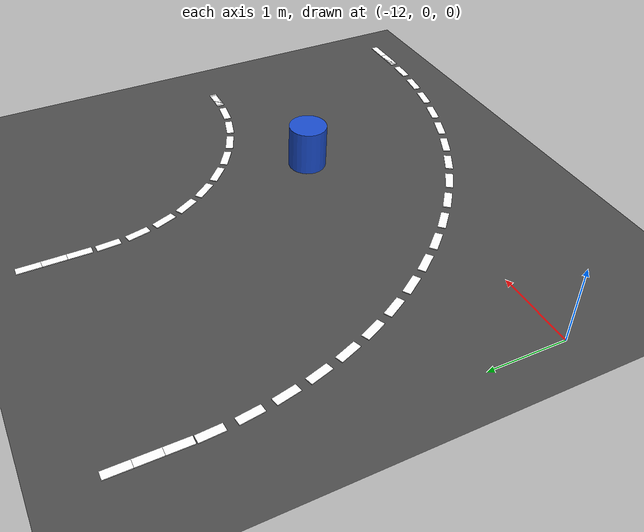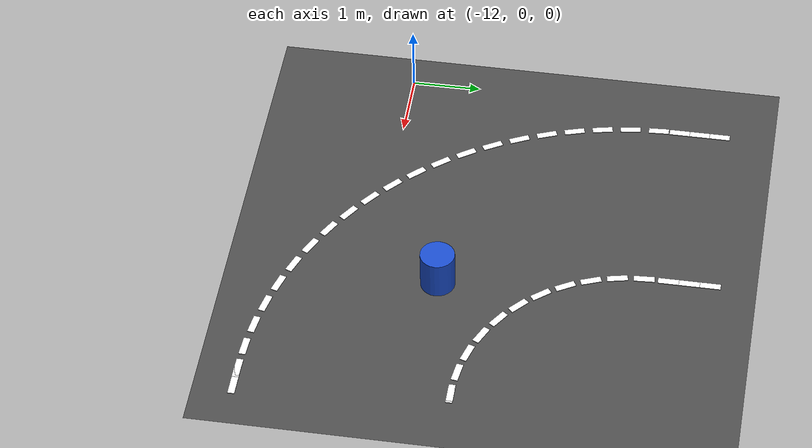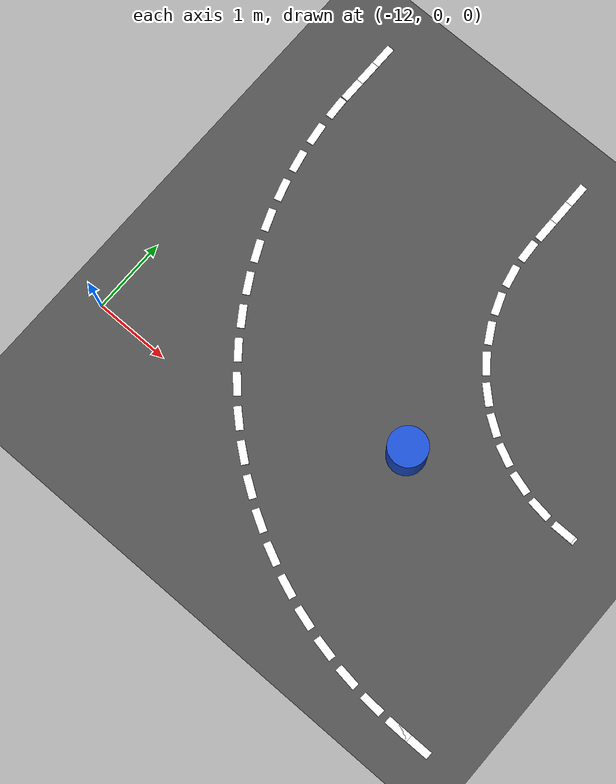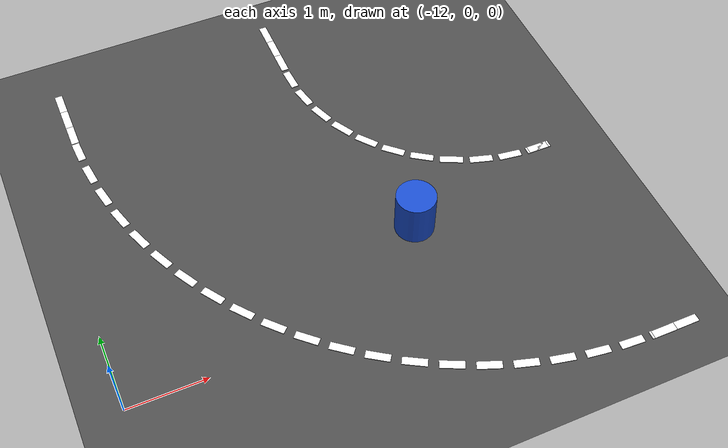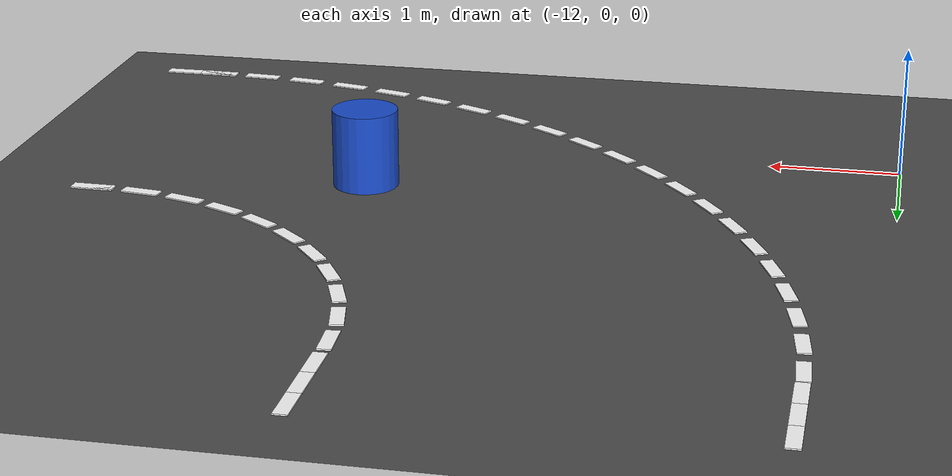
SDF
<sdf version="1.10">
 <world name="igvc_autonav">
  <model name="ground_plane">
   <static>true</static>
   <link name="link">
    <collision name="collision">
     <geometry><plane><normal>0 0 1</normal><size>60 60</size></plane></geometry>
     <surface><friction><ode><mu>0.80000000000000004</mu><mu2>0.80000000000000004</mu2></ode></friction></surface>
    </collision>
    <visual name="visual">
     <geometry><plane><normal>0 0 1</normal><size>60 60</size></plane></geometry>
     <material>
      <ambient>0.25 0.25 0.25 1</ambient>
      <diffuse>0.300000012 0.300000012 0.300000012 1</diffuse>
      <specular>0.100000001 0.100000001 0.100000001 1</specular>
     </material>
    </visual>
    <inertial>
     <mass>1</mass>
     <inertia><ixx>1</ixx><ixy>0</ixy><ixz>0</ixz><iyy>1</iyy><iyz>0</iyz><izz>1</izz></inertia>
    </inertial>
   </link>
  </model>
  <model name="lane_inner_0">
   <static>true</static>
   <pose>-6 1.5 0.01 0 0 0</pose>
   <link name="link">
    <visual name="visual">
     <geometry><box><size>0.29999999999999999 0.10000000000000001 0.01</size></box></geometry>
     <material><ambient>1 1 1 1</ambient><diffuse>1 1 1 1</diffuse><emissive>1 1 1 1</emissive></material>
    </visual>
    <inertial>
     <mass>1</mass>
     <inertia><ixx>1</ixx><ixy>0</ixy><ixz>0</ixz><iyy>1</iyy><iyz>0</iyz><izz>1</izz></inertia>
    </inertial>
   </link>
  </model>
  <model name="lane_inner_177">
   <static>true</static>
   <pose>-8.5 4.8499999999999996 0.01 0 0 -1.5708</pose>
   <link name="link">
    <visual name="visual">
     <geometry><box><size>0.29999999999999999 0.10000000000000001 0.01</size></box></geometry>
     <material><ambient>1 1 1 1</ambient><diffuse>1 1 1 1</diffuse><emissive>1 1 1 1</emissive></material>
    </visual>
    <inertial>
     <mass>1</mass>
     <inertia><ixx>1</ixx><ixy>0</ixy><ixz>0</ixz><iyy>1</iyy><iyz>0</iyz><izz>1</izz></inertia>
    </inertial>
   </link>
  </model>
  <model name="lane_inner_178">
   <static>true</static>
   <pose>-8.5 4.5499999999999998 0.01 0 0 -1.5708</pose>
   <link name="link">
    <visual name="visual">
     <geometry><box><size>0.29999999999999999 0.10000000000000001 0.01</size></box></geometry>
     <material><ambient>1 1 1 1</ambient><diffuse>1 1 1 1</diffuse><emissive>1 1 1 1</emissive></material>
    </visual>
    <inertial>
     <mass>1</mass>
     <inertia><ixx>1</ixx><ixy>0</ixy><ixz>0</ixz><iyy>1</iyy><iyz>0</iyz><izz>1</izz></inertia>
    </inertial>
   </link>
  </model>
  <model name="lane_inner_179">
   <static>true</static>
   <pose>-8.5 4.25 0.01 0 0 -1.5708</pose>
   <link name="link">
    <visual name="visual">
     <geometry><box><size>0.29999999999999999 0.10000000000000001 0.01</size></box></geometry>
     <material><ambient>1 1 1 1</ambient><diffuse>1 1 1 1</diffuse><emissive>1 1 1 1</emissive></material>
    </visual>
    <inertial>
     <mass>1</mass>
     <inertia><ixx>1</ixx><ixy>0</ixy><ixz>0</ixz><iyy>1</iyy><iyz>0</iyz><izz>1</izz></inertia>
    </inertial>
   </link>
  </model>
  <model name="lane_inner_180">
   <static>true</static>
   <pose>-8.4982000000000006 3.9041999999999999 0.01 0 0 -1.5132999999999999</pose>
   <link name="link">
    <visual name="visual">
     <geometry><box><size>0.29999999999999999 0.10000000000000001 0.01</size></box></geometry>
     <material><ambient>1 1 1 1</ambient><diffuse>1 1 1 1</diffuse><emissive>1 1 1 1</emissive></material>
    </visual>
    <inertial>
     <mass>1</mass>
     <inertia><ixx>1</ixx><ixy>0</ixy><ixz>0</ixz><iyy>1</iyy><iyz>0</iyz><izz>1</izz></inertia>
    </inertial>
   </link>
  </model>
  <model name="lane_inner_181">
   <static>true</static>
   <pose>-8.4542999999999999 3.524 0.01 0 0 -1.3601000000000001</pose>
   <link name="link">
    <visual name="visual">
     <geometry><box><size>0.29999999999999999 0.10000000000000001 0.01</size></box></geometry>
     <material><ambient>1 1 1 1</ambient><diffuse>1 1 1 1</diffuse><emissive>1 1 1 1</emissive></material>
    </visual>
    <inertial>
     <mass>1</mass>
     <inertia><ixx>1</ixx><ixy>0</ixy><ixz>0</ixz><iyy>1</iyy><iyz>0</iyz><izz>1</izz></inertia>
    </inertial>
   </link>
  </model>
  <model name="lane_inner_182">
   <static>true</static>
   <pose>-8.3529 3.1549999999999998 0.01 0 0 -1.2068000000000001</pose>
   <link name="link">
    <visual name="visual">
     <geometry><box><size>0.29999999999999999 0.10000000000000001 0.01</size></box></geometry>
     <material><ambient>1 1 1 1</ambient><diffuse>1 1 1 1</diffuse><emissive>1 1 1 1</emissive></material>
    </visual>
    <inertial>
     <mass>1</mass>
     <inertia><ixx>1</ixx><ixy>0</ixy><ixz>0</ixz><iyy>1</iyy><iyz>0</iyz><izz>1</izz></inertia>
    </inertial>
   </link>
  </model>
  <model name="lane_inner_183">
   <static>true</static>
   <pose>-8.1963000000000008 2.8056999999999999 0.01 0 0 -1.0536000000000001</pose>
   <link name="link">
    <visual name="visual">
     <geometry><box><size>0.29999999999999999 0.10000000000000001 0.01</size></box></geometry>
     <material><ambient>1 1 1 1</ambient><diffuse>1 1 1 1</diffuse><emissive>1 1 1 1</emissive></material>
    </visual>
    <inertial>
     <mass>1</mass>
     <inertia><ixx>1</ixx><ixy>0</ixy><ixz>0</ixz><iyy>1</iyy><iyz>0</iyz><izz>1</izz></inertia>
    </inertial>
   </link>
  </model>
  <model name="lane_inner_184">
   <static>true</static>
   <pose>-7.9882 2.4843999999999999 0.01 0 0 -0.90029999999999999</pose>
   <link name="link">
    <visual name="visual">
     <geometry><box><size>0.29999999999999999 0.10000000000000001 0.01</size></box></geometry>
     <material><ambient>1 1 1 1</ambient><diffuse>1 1 1 1</diffuse><emissive>1 1 1 1</emissive></material>
    </visual>
    <inertial>
     <mass>1</mass>
     <inertia><ixx>1</ixx><ixy>0</ixy><ixz>0</ixz><iyy>1</iyy><iyz>0</iyz><izz>1</izz></inertia>
    </inertial>
   </link>
  </model>
  <model name="lane_inner_185">
   <static>true</static>
   <pose>-7.7336 2.1987000000000001 0.01 0 0 -0.74709999999999988</pose>
   <link name="link">
    <visual name="visual">
     <geometry><box><size>0.29999999999999999 0.10000000000000001 0.01</size></box></geometry>
     <material><ambient>1 1 1 1</ambient><diffuse>1 1 1 1</diffuse><emissive>1 1 1 1</emissive></material>
    </visual>
    <inertial>
     <mass>1</mass>
     <inertia><ixx>1</ixx><ixy>0</ixy><ixz>0</ixz><iyy>1</iyy><iyz>0</iyz><izz>1</izz></inertia>
    </inertial>
   </link>
  </model>
  <model name="lane_inner_186">
   <static>true</static>
   <pose>-7.4382999999999999 1.9552 0.01 0 0 -0.59379999999999999</pose>
   <link name="link">
    <visual name="visual">
     <geometry><box><size>0.29999999999999999 0.10000000000000001 0.01</size></box></geometry>
     <material><ambient>1 1 1 1</ambient><diffuse>1 1 1 1</diffuse><emissive>1 1 1 1</emissive></material>
    </visual>
    <inertial>
     <mass>1</mass>
     <inertia><ixx>1</ixx><ixy>0</ixy><ixz>0</ixz><iyy>1</iyy><iyz>0</iyz><izz>1</izz></inertia>
    </inertial>
   </link>
  </model>
  <model name="lane_inner_187">
   <static>true</static>
   <pose>-7.1093000000000002 1.7596000000000001 0.01 0 0 -0.44060000000000005</pose>
   <link name="link">
    <visual name="visual">
     <geometry><box><size>0.29999999999999999 0.10000000000000001 0.01</size></box></geometry>
     <material><ambient>1 1 1 1</ambient><diffuse>1 1 1 1</diffuse><emissive>1 1 1 1</emissive></material>
    </visual>
    <inertial>
     <mass>1</mass>
     <inertia><ixx>1</ixx><ixy>0</ixy><ixz>0</ixz><iyy>1</iyy><iyz>0</iyz><izz>1</izz></inertia>
    </inertial>
   </link>
  </model>
  <model name="lane_inner_188">
   <static>true</static>
   <pose>-6.7542999999999997 1.6165 0.01 0 0 -0.2873</pose>
   <link name="link">
    <visual name="visual">
     <geometry><box><size>0.29999999999999999 0.10000000000000001 0.01</size></box></geometry>
     <material><ambient>1 1 1 1</ambient><diffuse>1 1 1 1</diffuse><emissive>1 1 1 1</emissive></material>
    </visual>
    <inertial>
     <mass>1</mass>
     <inertia><ixx>1</ixx><ixy>0</ixy><ixz>0</ixz><iyy>1</iyy><iyz>0</iyz><izz>1</izz></inertia>
    </inertial>
   </link>
  </model>
  <model name="lane_inner_189">
   <static>true</static>
   <pose>-6.3815999999999997 1.5293000000000001 0.01 0 0 -0.1341</pose>
   <link name="link">
    <visual name="visual">
     <geometry><box><size>0.29999999999999999 0.10000000000000001 0.01</size></box></geometry>
     <material><ambient>1 1 1 1</ambient><diffuse>1 1 1 1</diffuse><emissive>1 1 1 1</emissive></material>
    </visual>
    <inertial>
     <mass>1</mass>
     <inertia><ixx>1</ixx><ixy>0</ixy><ixz>0</ixz><iyy>1</iyy><iyz>0</iyz><izz>1</izz></inertia>
    </inertial>
   </link>
  </model>
  <model name="lane_inner_190">
   <static>true</static>
   <pose>-5.9713000000000003 1.4997 0.01 0 0 -0.016900000000000005</pose>
   <link name="link">
    <visual name="visual">
     <geometry><box><size>0.29999999999999999 0.10000000000000001 0.01</size></box></geometry>
     <material><ambient>1 1 1 1</ambient><diffuse>1 1 1 1</diffuse><emissive>1 1 1 1</emissive></material>
    </visual>
    <inertial>
     <mass>1</mass>
     <inertia><ixx>1</ixx><ixy>0</ixy><ixz>0</ixz><iyy>1</iyy><iyz>0</iyz><izz>1</izz></inertia>
    </inertial>
   </link>
  </model>
  <model name="lane_outer_0">
   <static>true</static>
   <pose>-6 -1.5 0.01 0 0 0</pose>
   <link name="link">
    <visual name="visual">
     <geometry><box><size>0.29999999999999999 0.10000000000000001 0.01</size></box></geometry>
     <material><ambient>1 1 1 1</ambient><diffuse>1 1 1 1</diffuse><emissive>1 1 1 1</emissive></material>
    </visual>
    <inertial>
     <mass>1</mass>
     <inertia><ixx>1</ixx><ixy>0</ixy><ixz>0</ixz><iyy>1</iyy><iyz>0</iyz><izz>1</izz></inertia>
    </inertial>
   </link>
  </model>
  <model name="lane_outer_1">
   <static>true</static>
   <pose>-5.7000000000000002 -1.5 0.01 0 0 0</pose>
   <link name="link">
    <visual name="visual">
     <geometry><box><size>0.29999999999999999 0.10000000000000001 0.01</size></box></geometry>
     <material><ambient>1 1 1 1</ambient><diffuse>1 1 1 1</diffuse><emissive>1 1 1 1</emissive></material>
    </visual>
    <inertial>
     <mass>1</mass>
     <inertia><ixx>1</ixx><ixy>0</ixy><ixz>0</ixz><iyy>1</iyy><iyz>0</iyz><izz>1</izz></inertia>
    </inertial>
   </link>
  </model>
  <model name="lane_outer_210">
   <static>true</static>
   <pose>-11.5 4.7000000000000002 0.01 0 0 -1.5708</pose>
   <link name="link">
    <visual name="visual">
     <geometry><box><size>0.29999999999999999 0.10000000000000001 0.01</size></box></geometry>
     <material><ambient>1 1 1 1</ambient><diffuse>1 1 1 1</diffuse><emissive>1 1 1 1</emissive></material>
    </visual>
    <inertial>
     <mass>1</mass>
     <inertia><ixx>1</ixx><ixy>0</ixy><ixz>0</ixz><iyy>1</iyy><iyz>0</iyz><izz>1</izz></inertia>
    </inertial>
   </link>
  </model>
  <model name="lane_outer_211">
   <static>true</static>
   <pose>-11.5 4.4000000000000004 0.01 0 0 -1.5708</pose>
   <link name="link">
    <visual name="visual">
     <geometry><box><size>0.29999999999999999 0.10000000000000001 0.01</size></box></geometry>
     <material><ambient>1 1 1 1</ambient><diffuse>1 1 1 1</diffuse><emissive>1 1 1 1</emissive></material>
    </visual>
    <inertial>
     <mass>1</mass>
     <inertia><ixx>1</ixx><ixy>0</ixy><ixz>0</ixz><iyy>1</iyy><iyz>0</iyz><izz>1</izz></inertia>
    </inertial>
   </link>
  </model>
  <model name="lane_outer_212">
   <static>true</static>
   <pose>-11.5 4.0999999999999996 0.01 0 0 -1.5699000000000001</pose>
   <link name="link">
    <visual name="visual">
     <geometry><box><size>0.29999999999999999 0.10000000000000001 0.01</size></box></geometry>
     <material><ambient>1 1 1 1</ambient><diffuse>1 1 1 1</diffuse><emissive>1 1 1 1</emissive></material>
    </visual>
    <inertial>
     <mass>1</mass>
     <inertia><ixx>1</ixx><ixy>0</ixy><ixz>0</ixz><iyy>1</iyy><iyz>0</iyz><izz>1</izz></inertia>
    </inertial>
   </link>
  </model>
  <model name="lane_outer_213">
   <static>true</static>
   <pose>-11.496 3.7892999999999999 0.01 0 0 -1.5132999999999999</pose>
   <link name="link">
    <visual name="visual">
     <geometry><box><size>0.29999999999999999 0.10000000000000001 0.01</size></box></geometry>
     <material><ambient>1 1 1 1</ambient><diffuse>1 1 1 1</diffuse><emissive>1 1 1 1</emissive></material>
    </visual>
    <inertial>
     <mass>1</mass>
     <inertia><ixx>1</ixx><ixy>0</ixy><ixz>0</ixz><iyy>1</iyy><iyz>0</iyz><izz>1</izz></inertia>
    </inertial>
   </link>
  </model>
  <model name="lane_outer_214">
   <static>true</static>
   <pose>-11.463699999999999 3.3692000000000002 0.01 0 0 -1.4367000000000001</pose>
   <link name="link">
    <visual name="visual">
     <geometry><box><size>0.29999999999999999 0.10000000000000001 0.01</size></box></geometry>
     <material><ambient>1 1 1 1</ambient><diffuse>1 1 1 1</diffuse><emissive>1 1 1 1</emissive></material>
    </visual>
    <inertial>
     <mass>1</mass>
     <inertia><ixx>1</ixx><ixy>0</ixy><ixz>0</ixz><iyy>1</iyy><iyz>0</iyz><izz>1</izz></inertia>
    </inertial>
   </link>
  </model>
  <model name="lane_outer_215">
   <static>true</static>
   <pose>-11.3994 2.9527999999999999 0.01 0 0 -1.3601000000000001</pose>
   <link name="link">
    <visual name="visual">
     <geometry><box><size>0.29999999999999999 0.10000000000000001 0.01</size></box></geometry>
     <material><ambient>1 1 1 1</ambient><diffuse>1 1 1 1</diffuse><emissive>1 1 1 1</emissive></material>
    </visual>
    <inertial>
     <mass>1</mass>
     <inertia><ixx>1</ixx><ixy>0</ixy><ixz>0</ixz><iyy>1</iyy><iyz>0</iyz><izz>1</izz></inertia>
    </inertial>
   </link>
  </model>
  <model name="lane_outer_216">
   <static>true</static>
   <pose>-11.3034 2.5426000000000002 0.01 0 0 -1.2835000000000003</pose>
   <link name="link">
    <visual name="visual">
     <geometry><box><size>0.29999999999999999 0.10000000000000001 0.01</size></box></geometry>
     <material><ambient>1 1 1 1</ambient><diffuse>1 1 1 1</diffuse><emissive>1 1 1 1</emissive></material>
    </visual>
    <inertial>
     <mass>1</mass>
     <inertia><ixx>1</ixx><ixy>0</ixy><ixz>0</ixz><iyy>1</iyy><iyz>0</iyz><izz>1</izz></inertia>
    </inertial>
   </link>
  </model>
  <model name="lane_outer_217">
   <static>true</static>
   <pose>-11.176299999999999 2.1408999999999998 0.01 0 0 -1.2068000000000001</pose>
   <link name="link">
    <visual name="visual">
     <geometry><box><size>0.29999999999999999 0.10000000000000001 0.01</size></box></geometry>
     <material><ambient>1 1 1 1</ambient><diffuse>1 1 1 1</diffuse><emissive>1 1 1 1</emissive></material>
    </visual>
    <inertial>
     <mass>1</mass>
     <inertia><ixx>1</ixx><ixy>0</ixy><ixz>0</ixz><iyy>1</iyy><iyz>0</iyz><izz>1</izz></inertia>
    </inertial>
   </link>
  </model>
  <model name="lane_outer_218">
   <static>true</static>
   <pose>-11.018800000000001 1.7501 0.01 0 0 -1.1302000000000001</pose>
   <link name="link">
    <visual name="visual">
     <geometry><box><size>0.29999999999999999 0.10000000000000001 0.01</size></box></geometry>
     <material><ambient>1 1 1 1</ambient><diffuse>1 1 1 1</diffuse><emissive>1 1 1 1</emissive></material>
    </visual>
    <inertial>
     <mass>1</mass>
     <inertia><ixx>1</ixx><ixy>0</ixy><ixz>0</ixz><iyy>1</iyy><iyz>0</iyz><izz>1</izz></inertia>
    </inertial>
   </link>
  </model>
  <model name="lane_outer_219">
   <static>true</static>
   <pose>-10.831799999999999 1.3725000000000001 0.01 0 0 -1.0536000000000001</pose>
   <link name="link">
    <visual name="visual">
     <geometry><box><size>0.29999999999999999 0.10000000000000001 0.01</size></box></geometry>
     <material><ambient>1 1 1 1</ambient><diffuse>1 1 1 1</diffuse><emissive>1 1 1 1</emissive></material>
    </visual>
    <inertial>
     <mass>1</mass>
     <inertia><ixx>1</ixx><ixy>0</ixy><ixz>0</ixz><iyy>1</iyy><iyz>0</iyz><izz>1</izz></inertia>
    </inertial>
   </link>
  </model>
  <model name="lane_outer_220">
   <static>true</static>
   <pose>-10.6165 1.0104 0.01 0 0 -0.9770000000000002</pose>
   <link name="link">
    <visual name="visual">
     <geometry><box><size>0.29999999999999999 0.10000000000000001 0.01</size></box></geometry>
     <material><ambient>1 1 1 1</ambient><diffuse>1 1 1 1</diffuse><emissive>1 1 1 1</emissive></material>
    </visual>
    <inertial>
     <mass>1</mass>
     <inertia><ixx>1</ixx><ixy>0</ixy><ixz>0</ixz><iyy>1</iyy><iyz>0</iyz><izz>1</izz></inertia>
    </inertial>
   </link>
  </model>
  <model name="lane_outer_221">
   <static>true</static>
   <pose>-10.3741 0.66579999999999995 0.01 0 0 -0.90029999999999999</pose>
   <link name="link">
    <visual name="visual">
     <geometry><box><size>0.29999999999999999 0.10000000000000001 0.01</size></box></geometry>
     <material><ambient>1 1 1 1</ambient><diffuse>1 1 1 1</diffuse><emissive>1 1 1 1</emissive></material>
    </visual>
    <inertial>
     <mass>1</mass>
     <inertia><ixx>1</ixx><ixy>0</ixy><ixz>0</ixz><iyy>1</iyy><iyz>0</iyz><izz>1</izz></inertia>
    </inertial>
   </link>
  </model>
  <model name="lane_outer_222">
   <static>true</static>
   <pose>-10.106 0.3407 0.01 0 0 -0.82369999999999999</pose>
   <link name="link">
    <visual name="visual">
     <geometry><box><size>0.29999999999999999 0.10000000000000001 0.01</size></box></geometry>
     <material><ambient>1 1 1 1</ambient><diffuse>1 1 1 1</diffuse><emissive>1 1 1 1</emissive></material>
    </visual>
    <inertial>
     <mass>1</mass>
     <inertia><ixx>1</ixx><ixy>0</ixy><ixz>0</ixz><iyy>1</iyy><iyz>0</iyz><izz>1</izz></inertia>
    </inertial>
   </link>
  </model>
  <model name="lane_outer_223">
   <static>true</static>
   <pose>-9.8139000000000003 0.037100000000000001 0.01 0 0 -0.74709999999999988</pose>
   <link name="link">
    <visual name="visual">
     <geometry><box><size>0.29999999999999999 0.10000000000000001 0.01</size></box></geometry>
     <material><ambient>1 1 1 1</ambient><diffuse>1 1 1 1</diffuse><emissive>1 1 1 1</emissive></material>
    </visual>
    <inertial>
     <mass>1</mass>
     <inertia><ixx>1</ixx><ixy>0</ixy><ixz>0</ixz><iyy>1</iyy><iyz>0</iyz><izz>1</izz></inertia>
    </inertial>
   </link>
  </model>
  <model name="lane_outer_224">
   <static>true</static>
   <pose>-9.4992999999999999 -0.2432 0.01 0 0 -0.67049999999999998</pose>
   <link name="link">
    <visual name="visual">
     <geometry><box><size>0.29999999999999999 0.10000000000000001 0.01</size></box></geometry>
     <material><ambient>1 1 1 1</ambient><diffuse>1 1 1 1</diffuse><emissive>1 1 1 1</emissive></material>
    </visual>
    <inertial>
     <mass>1</mass>
     <inertia><ixx>1</ixx><ixy>0</ixy><ixz>0</ixz><iyy>1</iyy><iyz>0</iyz><izz>1</izz></inertia>
    </inertial>
   </link>
  </model>
  <model name="lane_outer_225">
   <static>true</static>
   <pose>-9.1643000000000008 -0.49859999999999999 0.01 0 0 -0.59379999999999999</pose>
   <link name="link">
    <visual name="visual">
     <geometry><box><size>0.29999999999999999 0.10000000000000001 0.01</size></box></geometry>
     <material><ambient>1 1 1 1</ambient><diffuse>1 1 1 1</diffuse><emissive>1 1 1 1</emissive></material>
    </visual>
    <inertial>
     <mass>1</mass>
     <inertia><ixx>1</ixx><ixy>0</ixy><ixz>0</ixz><iyy>1</iyy><iyz>0</iyz><izz>1</izz></inertia>
    </inertial>
   </link>
  </model>
  <model name="lane_outer_226">
   <static>true</static>
   <pose>-8.8106000000000009 -0.72760000000000002 0.01 0 0 -0.51720000000000022</pose>
   <link name="link">
    <visual name="visual">
     <geometry><box><size>0.29999999999999999 0.10000000000000001 0.01</size></box></geometry>
     <material><ambient>1 1 1 1</ambient><diffuse>1 1 1 1</diffuse><emissive>1 1 1 1</emissive></material>
    </visual>
    <inertial>
     <mass>1</mass>
     <inertia><ixx>1</ixx><ixy>0</ixy><ixz>0</ixz><iyy>1</iyy><iyz>0</iyz><izz>1</izz></inertia>
    </inertial>
   </link>
  </model>
  <model name="lane_outer_227">
   <static>true</static>
   <pose>-8.4405000000000001 -0.92889999999999995 0.01 0 0 -0.44060000000000005</pose>
   <link name="link">
    <visual name="visual">
     <geometry><box><size>0.29999999999999999 0.10000000000000001 0.01</size></box></geometry>
     <material><ambient>1 1 1 1</ambient><diffuse>1 1 1 1</diffuse><emissive>1 1 1 1</emissive></material>
    </visual>
    <inertial>
     <mass>1</mass>
     <inertia><ixx>1</ixx><ixy>0</ixy><ixz>0</ixz><iyy>1</iyy><iyz>0</iyz><izz>1</izz></inertia>
    </inertial>
   </link>
  </model>
  <model name="lane_outer_228">
   <static>true</static>
   <pose>-8.0559999999999992 -1.1012999999999999 0.01 0 0 -0.36399999999999999</pose>
   <link name="link">
    <visual name="visual">
     <geometry><box><size>0.29999999999999999 0.10000000000000001 0.01</size></box></geometry>
     <material><ambient>1 1 1 1</ambient><diffuse>1 1 1 1</diffuse><emissive>1 1 1 1</emissive></material>
    </visual>
    <inertial>
     <mass>1</mass>
     <inertia><ixx>1</ixx><ixy>0</ixy><ixz>0</ixz><iyy>1</iyy><iyz>0</iyz><izz>1</izz></inertia>
    </inertial>
   </link>
  </model>
  <model name="lane_outer_229">
   <static>true</static>
   <pose>-7.6595000000000004 -1.2437 0.01 0 0 -0.2873</pose>
   <link name="link">
    <visual name="visual">
     <geometry><box><size>0.29999999999999999 0.10000000000000001 0.01</size></box></geometry>
     <material><ambient>1 1 1 1</ambient><diffuse>1 1 1 1</diffuse><emissive>1 1 1 1</emissive></material>
    </visual>
    <inertial>
     <mass>1</mass>
     <inertia><ixx>1</ixx><ixy>0</ixy><ixz>0</ixz><iyy>1</iyy><iyz>0</iyz><izz>1</izz></inertia>
    </inertial>
   </link>
  </model>
  <model name="lane_outer_230">
   <static>true</static>
   <pose>-7.2531999999999996 -1.3552999999999999 0.01 0 0 -0.2107</pose>
   <link name="link">
    <visual name="visual">
     <geometry><box><size>0.29999999999999999 0.10000000000000001 0.01</size></box></geometry>
     <material><ambient>1 1 1 1</ambient><diffuse>1 1 1 1</diffuse><emissive>1 1 1 1</emissive></material>
    </visual>
    <inertial>
     <mass>1</mass>
     <inertia><ixx>1</ixx><ixy>0</ixy><ixz>0</ixz><iyy>1</iyy><iyz>0</iyz><izz>1</izz></inertia>
    </inertial>
   </link>
  </model>
  <model name="lane_outer_231">
   <static>true</static>
   <pose>-6.8395999999999999 -1.4355 0.01 0 0 -0.1341</pose>
   <link name="link">
    <visual name="visual">
     <geometry><box><size>0.29999999999999999 0.10000000000000001 0.01</size></box></geometry>
     <material><ambient>1 1 1 1</ambient><diffuse>1 1 1 1</diffuse><emissive>1 1 1 1</emissive></material>
    </visual>
    <inertial>
     <mass>1</mass>
     <inertia><ixx>1</ixx><ixy>0</ixy><ixz>0</ixz><iyy>1</iyy><iyz>0</iyz><izz>1</izz></inertia>
    </inertial>
   </link>
  </model>
  <model name="lane_outer_232">
   <static>true</static>
   <pose>-6.4210000000000003 -1.4839 0.01 0 0 -0.057500000000000002</pose>
   <link name="link">
    <visual name="visual">
     <geometry><box><size>0.29999999999999999 0.10000000000000001 0.01</size></box></geometry>
     <material><ambient>1 1 1 1</ambient><diffuse>1 1 1 1</diffuse><emissive>1 1 1 1</emissive></material>
    </visual>
    <inertial>
     <mass>1</mass>
     <inertia><ixx>1</ixx><ixy>0</ixy><ixz>0</ixz><iyy>1</iyy><iyz>0</iyz><izz>1</izz></inertia>
    </inertial>
   </link>
  </model>
  <model name="lane_outer_233">
   <static>true</static>
   <pose>-6.0286999999999997 -1.4997 0.01 0 0 -0.0207</pose>
   <link name="link">
    <visual name="visual">
     <geometry><box><size>0.29999999999999999 0.10000000000000001 0.01</size></box></geometry>
     <material><ambient>1 1 1 1</ambient><diffuse>1 1 1 1</diffuse><emissive>1 1 1 1</emissive></material>
    </visual>
    <inertial>
     <mass>1</mass>
     <inertia><ixx>1</ixx><ixy>0</ixy><ixz>0</ixz><iyy>1</iyy><iyz>0</iyz><izz>1</izz></inertia>
    </inertial>
   </link>
  </model>
  <model name="barrel_minspeed">
   <static>true</static>
   <link name="link">
    <collision name="collision">
     <geometry><cylinder><radius>0.25</radius><length>0.59999999999999998</length></cylinder></geometry>
     <pose>0 0 0.29999999999999999 0 0 0</pose>
    </collision>
    <visual name="visual">
     <geometry><cylinder><radius>0.25</radius><length>0.59999999999999998</length></cylinder></geometry>
     <pose>0 0 0.29999999999999999 0 0 0</pose>
     <material>
      <ambient>0.100000001 0.300000012 0.800000012 1</ambient>
      <diffuse>0.100000001 0.300000012 0.800000012 1</diffuse>
      <specular>0.300000012 0.300000012 0.300000012 1</specular>
     </material>
    </visual>
    <inertial>
     <mass>1</mass>
     <inertia><ixx>1</ixx><ixy>0</ixy><ixz>0</ixz><iyy>1</iyy><iyz>0</iyz><izz>1</izz></inertia>
    </inertial>
   </link>
   <pose>-8 1 0 0 0 0</pose>
  </model>
 </world>
</sdf>
